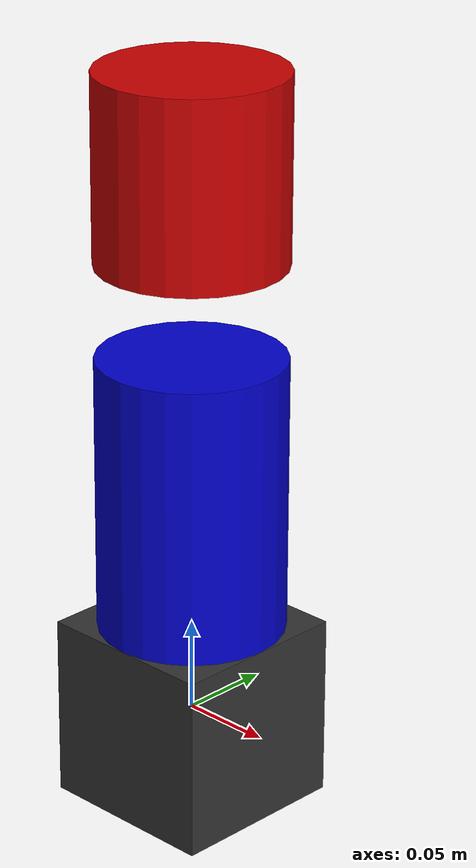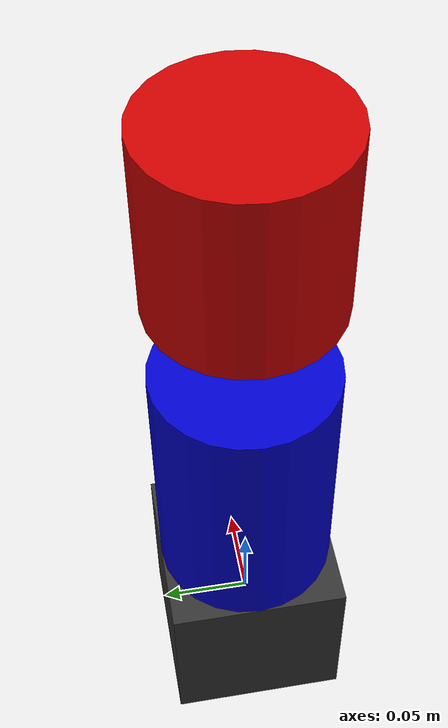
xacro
<?xml version="1.0"?>
<!-- Basic differential drive mobile base -->
<robot xmlns:xacro="http://www.ros.org/wiki/xacro" name="gripper_robot">
    <xacro:arg name="prefix" default="" />

    <!-- Include the diffbot_description.urdf.xacro -->
    <xacro:include
        filename="$(find bots_description)/gripper/urdf/gripper.urdf.xacro" />
    <!-- Import Rviz colors -->
    <xacro:include
        filename="$(find bots_description)/common/urdf/materials.xacro" />

    <xacro:include
        filename="$(find gripper_ctrl_pkg)/hardware_interface/gripper.gzb_control.xacro" />

    <xacro:gripper_gzb_control prefix="$(arg prefix)" />

</robot>

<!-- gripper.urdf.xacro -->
<robot xmlns:xacro="http://www.ros.org/wiki/xacro" name="gripperRL" >

    <!-- Linear Actuator -->
    <link name="base_link">
        <inertial>
            <mass value="1.0"/>
            <origin xyz="0 0 0"/>
            <inertia ixx="0.01" iyy="0.01" izz="0.01" ixy="0.0" ixz="0.0" iyz="0.0"/>
        </inertial>
        <visual>
            <geometry>
                <box size="0.1 0.1 0.1"/>
            </geometry>
            <material name="gray"/>
        </visual>
        <collision>
            <geometry>
                <box size="0.1 0.1 0.1"/>
            </geometry>
        </collision>
    </link>

    <link name="linear_actuator">
        <inertial>
            <mass value="0.5"/>
            <origin xyz="0 0 0"/>
            <inertia ixx="0.002" iyy="0.002" izz="0.002" ixy="0.0" ixz="0.0" iyz="0.0"/>
        </inertial>
        <visual>
            <geometry>
                <cylinder radius="0.05" length="0.2"/>
            </geometry>
            <material name="blue"/>
        </visual>
        <collision>
            <geometry>
                <cylinder radius="0.05" length="0.2"/>
            </geometry>
        </collision>
    </link>

    <joint name="linear_joint" type="prismatic">
        <parent link="base_link"/>
        <child link="linear_actuator"/>
        <origin xyz="0 0 0.1" rpy="0 0 0"/>
        <axis xyz="0 0 1"/>
        <limit lower="0" upper="0.1" effort="100" velocity="0.1"/>
    </joint>

    <!-- Rotational Actuator -->
    <link name="rotational_actuator">
        <inertial>
            <mass value="0.3"/>
            <origin xyz="0 0 0"/>
            <inertia ixx="0.001" iyy="0.001" izz="0.001" ixy="0.0" ixz="0.0" iyz="0.0"/>
        </inertial>
        <visual>
            <geometry>
                <cylinder radius="0.05" length="0.1"/>
            </geometry>
            <material name="red"/>
        </visual>
        <collision>
            <geometry>
                <cylinder radius="0.05" length="0.1"/>
            </geometry>
        </collision>
    </link>

    <joint name="rotational_joint" type="revolute">
        <parent link="linear_actuator"/>
        <child link="rotational_actuator"/>
        <origin xyz="0 0 0.2" rpy="0 0 0"/>
        <axis xyz="0 1 0"/>
        <limit lower="-1.57" upper="1.57" effort="100" velocity="1.0"/>
    </joint>

</robot>

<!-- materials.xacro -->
<!--
Copied from ROS1 example:
https://github.com/ros-simulation/gazebo_ros_demos/blob/kinetic-devel/rrbot_description/urdf/materials.xacro
-->
<robot>

    <material name="black">
        <color rgba="0.0 0.0 0.0 1.0" />
    </material>

    <material name="blue">
        <color rgba="0.0 0.0 0.8 1.0" />
    </material>

    <material name="green">
        <color rgba="0.0 0.8 0.0 1.0" />
    </material>

    <material name="gray">
        <color rgba="0.2 0.2 0.2 1.0" />
    </material>

    <material name="orange">
        <color rgba="${255/255} ${108/255} ${10/255} 1.0" />
    </material>

    <material name="brown">
        <color rgba="${222/255} ${207/255} ${195/255} 1.0" />
    </material>

    <material name="red">
        <color rgba="0.8 0.0 0.0 1.0" />
    </material>

    <material name="white">
        <color rgba="1.0 1.0 1.0 1.0" />
    </material>

</robot>
